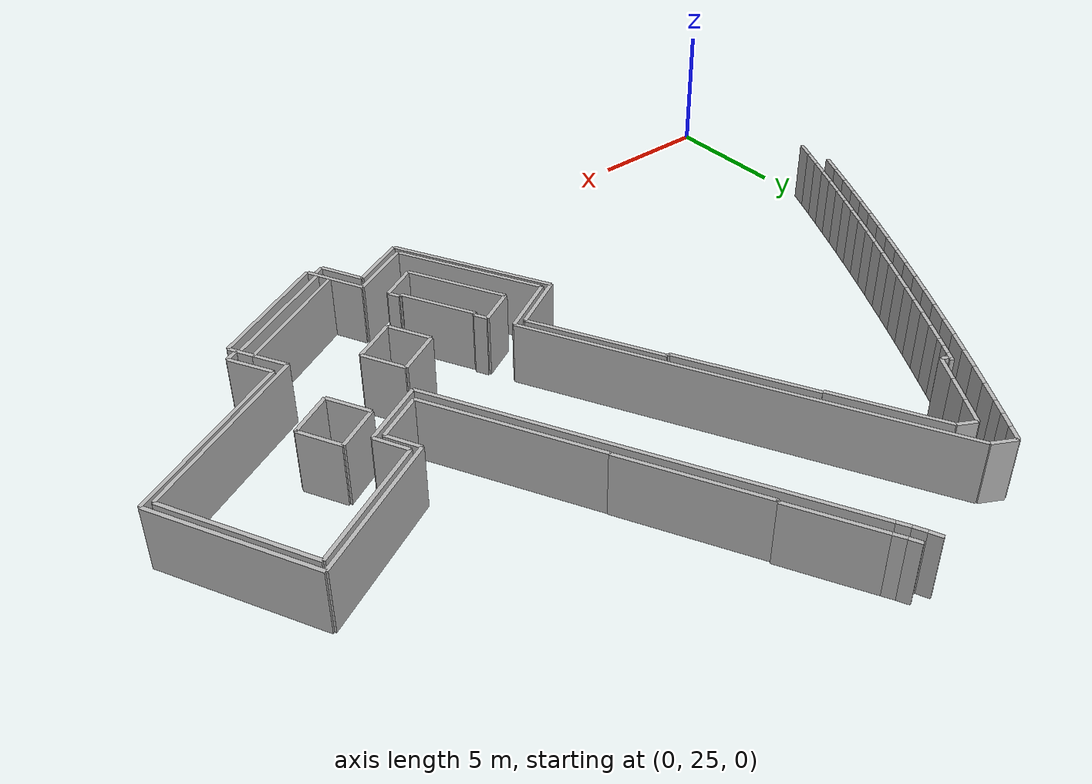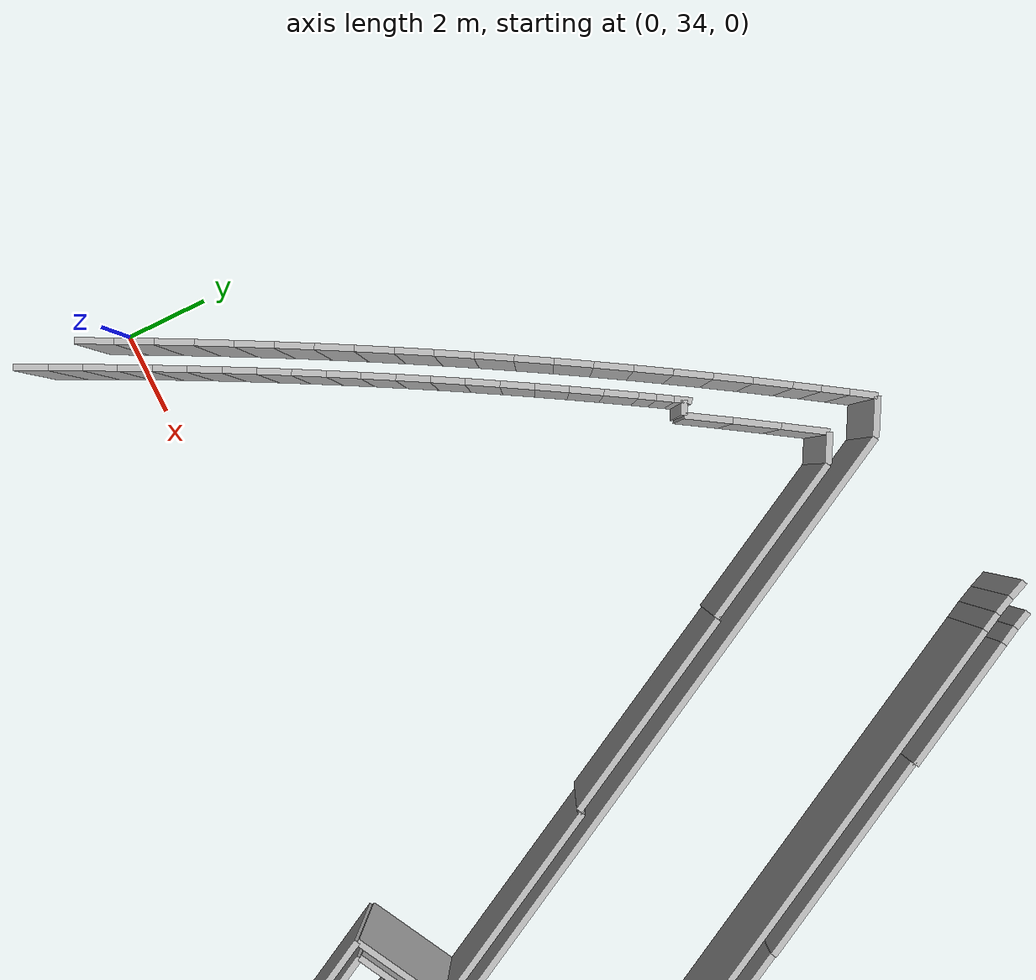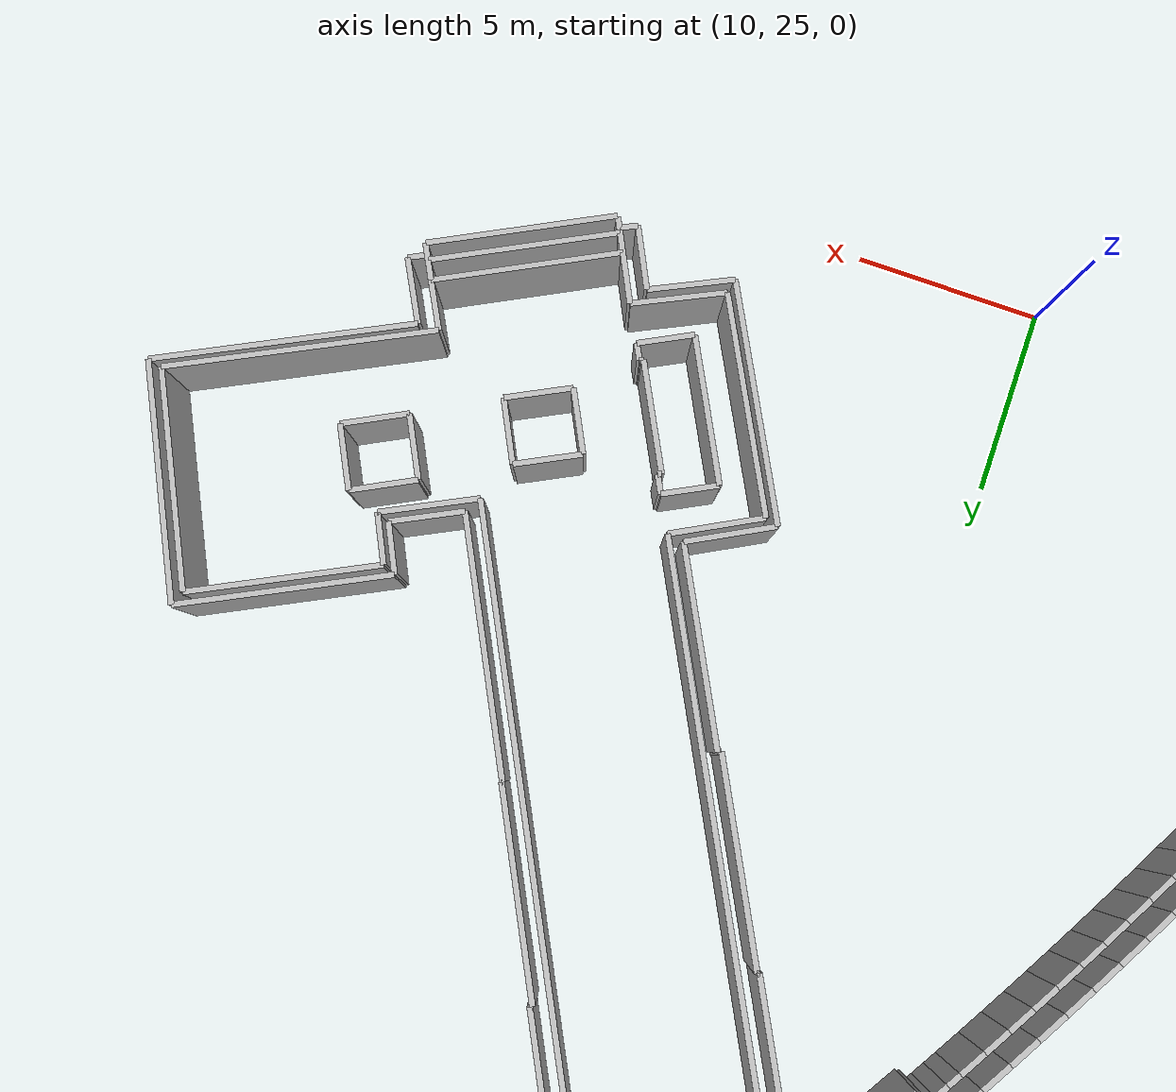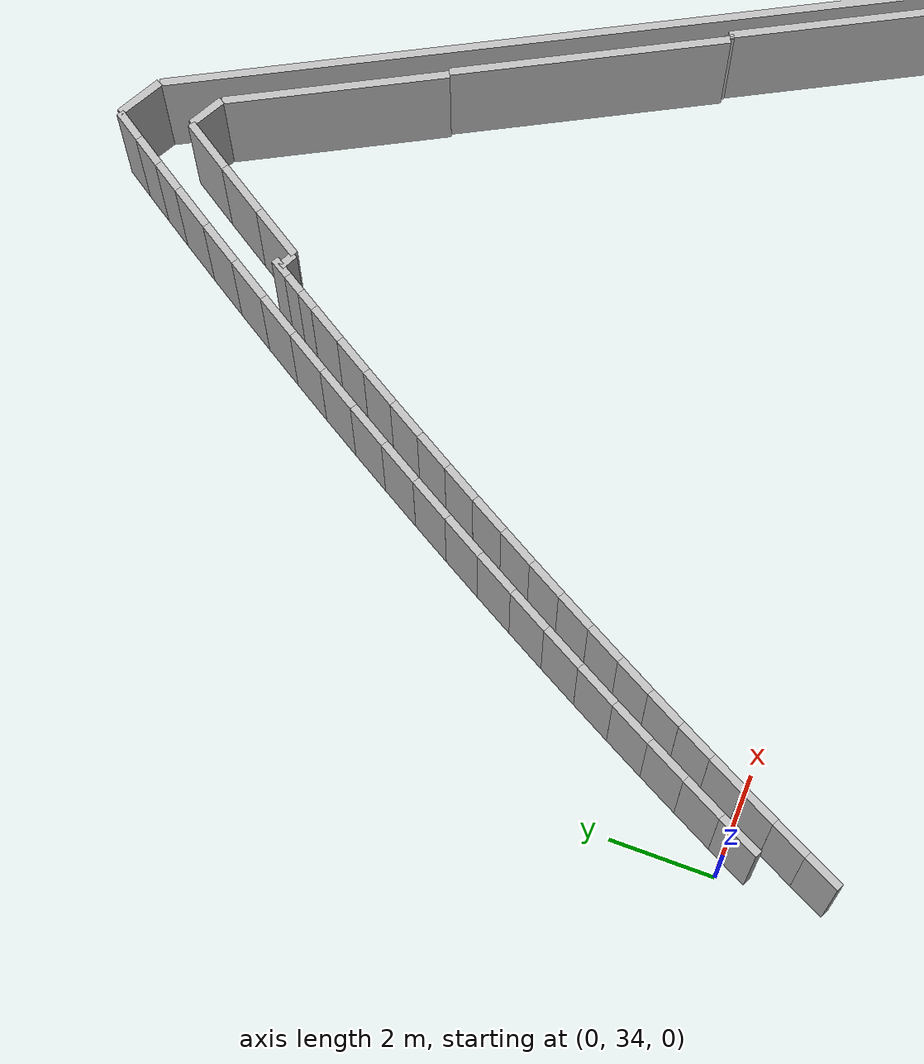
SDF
<sdf version="1.6">
 <model name="sps_0204">
  <static>1</static>
  <allow_auto_disable>0</allow_auto_disable>
  <link name="Wall28">
   <collision name="collision"><geometry><box><size>4.25279 0.15 2.5</size></box></geometry></collision>
   <visual name="visual">
    <geometry><box><size>4.25279 0.15 2.5</size></box></geometry>
    <transparency>0.0</transparency>
   </visual>
   <pose>11.0373 45.4844 1.25 0 -0 2.05709</pose>
  </link>
  <link name="Wall30">
   <collision name="collision"><geometry><box><size>0.0966874 0.15 2.5</size></box></geometry></collision>
   <visual name="visual">
    <geometry><box><size>0.0966874 0.15 2.5</size></box></geometry>
    <transparency>0.0</transparency>
   </visual>
   <pose>14.5934 38.9708 1.25 0 -0 0.474658</pose>
  </link>
  <link name="Wall33">
   <collision name="collision"><geometry><box><size>6.47312 0.15 2.5</size></box></geometry></collision>
   <visual name="visual">
    <geometry><box><size>6.47312 0.15 2.5</size></box></geometry>
    <transparency>0.0</transparency>
   </visual>
   <pose>16.5102 30.3436 1.25 0 0 -1.08328</pose>
  </link>
  <link name="Wall35">
   <collision name="collision"><geometry><box><size>2.28858 0.15 2.5</size></box></geometry></collision>
   <visual name="visual">
    <geometry><box><size>2.28858 0.15 2.5</size></box></geometry>
    <transparency>0.0</transparency>
   </visual>
   <pose>19.0546 27.9861 1.25 0 -0 0.454166</pose>
  </link>
  <link name="Wall413">
   <collision name="collision"><geometry><box><size>2.34081 0.15 2.5</size></box></geometry></collision>
   <visual name="visual">
    <geometry><box><size>2.34081 0.15 2.5</size></box></geometry>
    <transparency>0.0</transparency>
   </visual>
   <pose>20.8993 27.9341 1.25 0 0 -1.10477</pose>
  </link>
  <link name="Wall415">
   <collision name="collision"><geometry><box><size>6.75894 0.15 2.5</size></box></geometry></collision>
   <visual name="visual">
    <geometry><box><size>6.75894 0.15 2.5</size></box></geometry>
    <transparency>0.0</transparency>
   </visual>
   <pose>20.9337 38.4247 1.25 0 -0 2.05625</pose>
  </link>
  <link name="Wall416">
   <collision name="collision"><geometry><box><size>4.99709 0.15 2.5</size></box></geometry></collision>
   <visual name="visual">
    <geometry><box><size>4.99709 0.15 2.5</size></box></geometry>
    <transparency>0.0</transparency>
   </visual>
   <pose>23.6555 28.0325 1.25 0 -0 0.484067</pose>
  </link>
  <link name="Wall755">
   <collision name="collision"><geometry><box><size>0.728258 0.15 2.5</size></box></geometry></collision>
   <visual name="visual">
    <geometry><box><size>0.728258 0.15 2.5</size></box></geometry>
    <transparency>0.0</transparency>
   </visual>
   <pose>9.72488 47.5406 1.25 0 0 -0.505413</pose>
  </link>
  <link name="Wall759">
   <collision name="collision"><geometry><box><size>5.32181 0.15 2.5</size></box></geometry></collision>
   <visual name="visual">
    <geometry><box><size>5.32181 0.15 2.5</size></box></geometry>
    <transparency>0.0</transparency>
   </visual>
   <pose>18.1328 43.7763 1.25 0 -0 2.05629</pose>
  </link>
  <link name="Wall760">
   <collision name="collision"><geometry><box><size>0.456406 0.15 2.5</size></box></geometry></collision>
   <visual name="visual">
    <geometry><box><size>0.456406 0.15 2.5</size></box></geometry>
    <transparency>0.0</transparency>
   </visual>
   <pose>21.0629 27.0474 1.25 0 -0 0.454079</pose>
  </link>
  <link name="Wall762">
   <collision name="collision"><geometry><box><size>1.93319 0.15 2.5</size></box></geometry></collision>
   <visual name="visual">
    <geometry><box><size>1.93319 0.15 2.5</size></box></geometry>
    <transparency>0.0</transparency>
   </visual>
   <pose>23.3712 35.8758 1.25 0 0 -2.66888</pose>
  </link>
  <link name="Wall1157">
   <collision name="collision"><geometry><box><size>3.35007 0.15 2.5</size></box></geometry></collision>
   <visual name="visual">
    <geometry><box><size>3.35007 0.15 2.5</size></box></geometry>
    <transparency>0.0</transparency>
   </visual>
   <pose>16.1663 47.6404 1.25 0 -0 2.05625</pose>
  </link>
  <link name="Wall1159">
   <collision name="collision"><geometry><box><size>0.0198736 0.15 2.5</size></box></geometry></collision>
   <visual name="visual">
    <geometry><box><size>0.0198736 0.15 2.5</size></box></geometry>
    <transparency>0.0</transparency>
   </visual>
   <pose>19.3657 41.4183 1.25 0 -0 0.478756</pose>
  </link>
  <link name="Wall1162">
   <collision name="collision"><geometry><box><size>4.98615 0.15 2.5</size></box></geometry></collision>
   <visual name="visual">
    <geometry><box><size>4.98615 0.15 2.5</size></box></geometry>
    <transparency>0.0</transparency>
   </visual>
   <pose>23.1949 28.9172 1.25 0 -0 0.485913</pose>
  </link>
  <link name="Wall1165">
   <collision name="collision"><geometry><box><size>5.58246 0.15 2.5</size></box></geometry></collision>
   <visual name="visual">
    <geometry><box><size>5.58246 0.15 2.5</size></box></geometry>
    <transparency>0.0</transparency>
   </visual>
   <pose>26.1027 38.7876 1.25 0 0 -2.66886</pose>
  </link>
  <link name="Wall1166">
   <collision name="collision"><geometry><box><size>6.91351 0.15 2.5</size></box></geometry></collision>
   <visual name="visual">
    <geometry><box><size>6.91351 0.15 2.5</size></box></geometry>
    <transparency>0.0</transparency>
   </visual>
   <pose>28.391 32.8515 1.25 0 -0 0.472756</pose>
  </link>
  <link name="Wall1476">
   <collision name="collision"><geometry><box><size>5.29302 0.15 2.5</size></box></geometry></collision>
   <visual name="visual">
    <geometry><box><size>5.29302 0.15 2.5</size></box></geometry>
    <transparency>0.0</transparency>
   </visual>
   <pose>13.3136 41.2884 1.25 0 0 -1.08449</pose>
  </link>
  <link name="Wall1481">
   <collision name="collision"><geometry><box><size>1.34765 0.15 2.5</size></box></geometry></collision>
   <visual name="visual">
    <geometry><box><size>1.34765 0.15 2.5</size></box></geometry>
    <transparency>0.0</transparency>
   </visual>
   <pose>25.0743 30.6717 1.25 0 -0 2.07427</pose>
  </link>
  <link name="Wall1766">
   <collision name="collision"><geometry><box><size>0.344899 0.15 2.5</size></box></geometry></collision>
   <visual name="visual">
    <geometry><box><size>0.344899 0.15 2.5</size></box></geometry>
    <transparency>0.0</transparency>
   </visual>
   <pose>7.48968 45.0377 1.25 0 0 -0.453755</pose>
  </link>
  <link name="Wall1768">
   <collision name="collision"><geometry><box><size>0.0513748 0.15 2.5</size></box></geometry></collision>
   <visual name="visual">
    <geometry><box><size>0.0513748 0.15 2.5</size></box></geometry>
    <transparency>0.0</transparency>
   </visual>
   <pose>12.0539 43.6163 1.25 0 -0 0.476399</pose>
  </link>
  <link name="Wall2111">
   <collision name="collision"><geometry><box><size>15.6909 0.15 2.5</size></box></geometry></collision>
   <visual name="visual">
    <geometry><box><size>15.6909 0.15 2.5</size></box></geometry>
    <transparency>0.0</transparency>
   </visual>
   <pose>18.5987 41.9436 1.25 0 -0 2.05628</pose>
  </link>
  <link name="Wall2112">
   <collision name="collision"><geometry><box><size>1.34877 0.15 2.5</size></box></geometry></collision>
   <visual name="visual">
    <geometry><box><size>1.34877 0.15 2.5</size></box></geometry>
    <transparency>0.0</transparency>
   </visual>
   <pose>23.9247 36.9163 1.25 0 0 -1.098</pose>
  </link>
  <link name="Wall2115">
   <collision name="collision"><geometry><box><size>1.0022 0.15 2.5</size></box></geometry></collision>
   <visual name="visual">
    <geometry><box><size>1.0022 0.15 2.5</size></box></geometry>
    <transparency>0.0</transparency>
   </visual>
   <pose>25.6379 29.6408 1.25 0 0 -1.07476</pose>
  </link>
  <link name="Wall2116">
   <collision name="collision"><geometry><box><size>0.506853 0.15 2.5</size></box></geometry></collision>
   <visual name="visual">
    <geometry><box><size>0.506853 0.15 2.5</size></box></geometry>
    <transparency>0.0</transparency>
   </visual>
   <pose>25.946 29.6037 1.25 0 0 -2.66346</pose>
  </link>
  <link name="Wall2117">
   <collision name="collision"><geometry><box><size>1.77773 0.15 2.5</size></box></geometry></collision>
   <visual name="visual">
    <geometry><box><size>1.77773 0.15 2.5</size></box></geometry>
    <transparency>0.0</transparency>
   </visual>
   <pose>25.7422 30.4989 1.25 0 -0 2.07421</pose>
  </link>
  <link name="Wall2487">
   <collision name="collision"><geometry><box><size>0.0638214 0.15 2.5</size></box></geometry></collision>
   <visual name="visual">
    <geometry><box><size>0.0638214 0.15 2.5</size></box></geometry>
    <transparency>0.0</transparency>
   </visual>
   <pose>16.9195 46.1443 1.25 0 -0 0.474768</pose>
  </link>
  <link name="Wall2489">
   <collision name="collision"><geometry><box><size>2.39007 0.15 2.5</size></box></geometry></collision>
   <visual name="visual">
    <geometry><box><size>2.39007 0.15 2.5</size></box></geometry>
    <transparency>0.0</transparency>
   </visual>
   <pose>16.0427 33.7761 1.25 0 0 -2.64153</pose>
  </link>
  <link name="Wall2490">
   <collision name="collision"><geometry><box><size>5.25281 0.15 2.5</size></box></geometry></collision>
   <visual name="visual">
    <geometry><box><size>5.25281 0.15 2.5</size></box></geometry>
    <transparency>0.0</transparency>
   </visual>
   <pose>15.8639 36.671 1.25 0 0 -1.08448</pose>
  </link>
  <link name="Wall2493">
   <collision name="collision"><geometry><box><size>1.72477 0.15 2.5</size></box></geometry></collision>
   <visual name="visual">
    <geometry><box><size>1.72477 0.15 2.5</size></box></geometry>
    <transparency>0.0</transparency>
   </visual>
   <pose>20.4704 27.7177 1.25 0 0 -1.10476</pose>
  </link>
  <link name="Wall2496">
   <collision name="collision"><geometry><box><size>4.99734 0.15 2.5</size></box></geometry></collision>
   <visual name="visual">
    <geometry><box><size>4.99734 0.15 2.5</size></box></geometry>
    <transparency>0.0</transparency>
   </visual>
   <pose>23.4412 28.4403 1.25 0 -0 0.484055</pose>
  </link>
  <link name="Wall2502">
   <collision name="collision"><geometry><box><size>6.3269 0.15 2.5</size></box></geometry></collision>
   <visual name="visual">
    <geometry><box><size>6.3269 0.15 2.5</size></box></geometry>
    <transparency>0.0</transparency>
   </visual>
   <pose>30.0283 37.242 1.25 0 -0 2.04353</pose>
  </link>
  <link name="Wall6495">
   <collision name="collision"><geometry><box><size>1.72361 0.15 2.5</size></box></geometry></collision>
   <visual name="visual">
    <geometry><box><size>1.72361 0.15 2.5</size></box></geometry>
    <transparency>0.0</transparency>
   </visual>
   <pose>24.2963 34.3156 1.25 0 0 -1.08353</pose>
  </link>
  <link name="Wall6496">
   <collision name="collision"><geometry><box><size>1.76609 0.15 2.5</size></box></geometry></collision>
   <visual name="visual">
    <geometry><box><size>1.76609 0.15 2.5</size></box></geometry>
    <transparency>0.0</transparency>
   </visual>
   <pose>25.4802 33.9675 1.25 0 -0 0.487188</pose>
  </link>
  <link name="Wall6497">
   <collision name="collision"><geometry><box><size>1.72369 0.15 2.5</size></box></geometry></collision>
   <visual name="visual">
    <geometry><box><size>1.72369 0.15 2.5</size></box></geometry>
    <transparency>0.0</transparency>
   </visual>
   <pose>25.8569 35.1424 1.25 0 -0 2.05815</pose>
  </link>
  <link name="Wall6498">
   <collision name="collision"><geometry><box><size>1.76593 0.15 2.5</size></box></geometry></collision>
   <visual name="visual">
    <geometry><box><size>1.76593 0.15 2.5</size></box></geometry>
    <transparency>0.0</transparency>
   </visual>
   <pose>24.6731 35.4905 1.25 0 0 -2.65436</pose>
  </link>
  <link name="Wall8995">
   <collision name="collision"><geometry><box><size>0.637463 0.15 2.5</size></box></geometry></collision>
   <visual name="visual">
    <geometry><box><size>0.637463 0.15 2.5</size></box></geometry>
    <transparency>0.0</transparency>
   </visual>
   <pose>8.97726 48.7729 1.25 0 0 -2.15657</pose>
  </link>
  <link name="Wall8996">
   <collision name="collision"><geometry><box><size>0.637495 0.15 2.5</size></box></geometry></collision>
   <visual name="visual">
    <geometry><box><size>0.637495 0.15 2.5</size></box></geometry>
    <transparency>0.0</transparency>
   </visual>
   <pose>8.62615 48.2408 1.25 0 0 -2.1516</pose>
  </link>
  <link name="Wall8997">
   <collision name="collision"><geometry><box><size>0.637545 0.15 2.5</size></box></geometry></collision>
   <visual name="visual">
    <geometry><box><size>0.637545 0.15 2.5</size></box></geometry>
    <transparency>0.0</transparency>
   </visual>
   <pose>8.27776 47.7069 1.25 0 0 -2.14629</pose>
  </link>
  <link name="Wall8998">
   <collision name="collision"><geometry><box><size>0.895615 0.15 2.5</size></box></geometry></collision>
   <visual name="visual">
    <geometry><box><size>0.895615 0.15 2.5</size></box></geometry>
    <transparency>0.0</transparency>
   </visual>
   <pose>7.86196 47.0629 1.25 0 0 -2.14254</pose>
  </link>
  <link name="Wall8999">
   <collision name="collision"><geometry><box><size>0.895689 0.15 2.5</size></box></geometry></collision>
   <visual name="visual">
    <geometry><box><size>0.895689 0.15 2.5</size></box></geometry>
    <transparency>0.0</transparency>
   </visual>
   <pose>7.37966 46.3082 1.25 0 0 -2.13634</pose>
  </link>
  <link name="Wall9000">
   <collision name="collision"><geometry><box><size>0.895531 0.15 2.5</size></box></geometry></collision>
   <visual name="visual">
    <geometry><box><size>0.895531 0.15 2.5</size></box></geometry>
    <transparency>0.0</transparency>
   </visual>
   <pose>6.90215 45.5505 1.25 0 0 -2.12993</pose>
  </link>
  <link name="Wall9001">
   <collision name="collision"><geometry><box><size>0.895547 0.15 2.5</size></box></geometry></collision>
   <visual name="visual">
    <geometry><box><size>0.895547 0.15 2.5</size></box></geometry>
    <transparency>0.0</transparency>
   </visual>
   <pose>6.42956 44.7898 1.25 0 0 -2.1235</pose>
  </link>
  <link name="Wall9002">
   <collision name="collision"><geometry><box><size>0.895642 0.15 2.5</size></box></geometry></collision>
   <visual name="visual">
    <geometry><box><size>0.895642 0.15 2.5</size></box></geometry>
    <transparency>0.0</transparency>
   </visual>
   <pose>5.96175 44.0261 1.25 0 0 -2.11728</pose>
  </link>
  <link name="Wall9003">
   <collision name="collision"><geometry><box><size>0.895521 0.15 2.5</size></box></geometry></collision>
   <visual name="visual">
    <geometry><box><size>0.895521 0.15 2.5</size></box></geometry>
    <transparency>0.0</transparency>
   </visual>
   <pose>5.49874 43.2595 1.25 0 0 -2.11099</pose>
  </link>
  <link name="Wall9004">
   <collision name="collision"><geometry><box><size>0.895498 0.15 2.5</size></box></geometry></collision>
   <visual name="visual">
    <geometry><box><size>0.895498 0.15 2.5</size></box></geometry>
    <transparency>0.0</transparency>
   </visual>
   <pose>5.04055 42.4901 1.25 0 0 -2.10482</pose>
  </link>
  <link name="Wall9005">
   <collision name="collision"><geometry><box><size>0.895636 0.15 2.5</size></box></geometry></collision>
   <visual name="visual">
    <geometry><box><size>0.895636 0.15 2.5</size></box></geometry>
    <transparency>0.0</transparency>
   </visual>
   <pose>4.58715 41.7178 1.25 0 0 -2.09849</pose>
  </link>
  <link name="Wall9006">
   <collision name="collision"><geometry><box><size>0.895559 0.15 2.5</size></box></geometry></collision>
   <visual name="visual">
    <geometry><box><size>0.895559 0.15 2.5</size></box></geometry>
    <transparency>0.0</transparency>
   </visual>
   <pose>4.13866 40.9426 1.25 0 0 -2.09208</pose>
  </link>
  <link name="Wall9007">
   <collision name="collision"><geometry><box><size>0.895428 0.15 2.5</size></box></geometry></collision>
   <visual name="visual">
    <geometry><box><size>0.895428 0.15 2.5</size></box></geometry>
    <transparency>0.0</transparency>
   </visual>
   <pose>3.69506 40.1647 1.25 0 0 -2.08604</pose>
  </link>
  <link name="Wall9008">
   <collision name="collision"><geometry><box><size>0.895637 0.15 2.5</size></box></geometry></collision>
   <visual name="visual">
    <geometry><box><size>0.895637 0.15 2.5</size></box></geometry>
    <transparency>0.0</transparency>
   </visual>
   <pose>3.25634 39.384 1.25 0 0 -2.0795</pose>
  </link>
  <link name="Wall9009">
   <collision name="collision"><geometry><box><size>0.895544 0.15 2.5</size></box></geometry></collision>
   <visual name="visual">
    <geometry><box><size>0.895544 0.15 2.5</size></box></geometry>
    <transparency>0.0</transparency>
   </visual>
   <pose>2.82253 38.6005 1.25 0 0 -2.07341</pose>
  </link>
  <link name="Wall9010">
   <collision name="collision"><geometry><box><size>0.895611 0.15 2.5</size></box></geometry></collision>
   <visual name="visual">
    <geometry><box><size>0.895611 0.15 2.5</size></box></geometry>
    <transparency>0.0</transparency>
   </visual>
   <pose>2.39364 37.8143 1.25 0 0 -2.067</pose>
  </link>
  <link name="Wall9011">
   <collision name="collision"><geometry><box><size>0.895554 0.15 2.5</size></box></geometry></collision>
   <visual name="visual">
    <geometry><box><size>0.895554 0.15 2.5</size></box></geometry>
    <transparency>0.0</transparency>
   </visual>
   <pose>1.96975 37.0254 1.25 0 0 -2.06069</pose>
  </link>
  <link name="Wall9012">
   <collision name="collision"><geometry><box><size>0.895641 0.15 2.5</size></box></geometry></collision>
   <visual name="visual">
    <geometry><box><size>0.895641 0.15 2.5</size></box></geometry>
    <transparency>0.0</transparency>
   </visual>
   <pose>1.55086 36.2338 1.25 0 0 -2.05432</pose>
  </link>
  <link name="Wall9013">
   <collision name="collision"><geometry><box><size>0.895521 0.15 2.5</size></box></geometry></collision>
   <visual name="visual">
    <geometry><box><size>0.895521 0.15 2.5</size></box></geometry>
    <transparency>0.0</transparency>
   </visual>
   <pose>1.13695 35.4396 1.25 0 0 -2.04816</pose>
  </link>
  <link name="Wall9014">
   <collision name="collision"><geometry><box><size>0.895489 0.15 2.5</size></box></geometry></collision>
   <visual name="visual">
    <geometry><box><size>0.895489 0.15 2.5</size></box></geometry>
    <transparency>0.0</transparency>
   </visual>
   <pose>0.72805 34.6429 1.25 0 0 -2.04182</pose>
  </link>
  <link name="Wall9015">
   <collision name="collision"><geometry><box><size>0.895601 0.15 2.5</size></box></geometry></collision>
   <visual name="visual">
    <geometry><box><size>0.895601 0.15 2.5</size></box></geometry>
    <transparency>0.0</transparency>
   </visual>
   <pose>0.324149 33.8436 1.25 0 0 -2.03557</pose>
  </link>
  <link name="Wall9028">
   <collision name="collision"><geometry><box><size>1.09009 0.15 2.5</size></box></geometry></collision>
   <visual name="visual">
    <geometry><box><size>1.09009 0.15 2.5</size></box></geometry>
    <transparency>0.0</transparency>
   </visual>
   <pose>9.10967 47.2596 1.25 0 0 -2.1462</pose>
  </link>
  <link name="Wall9029">
   <collision name="collision"><geometry><box><size>1.08977 0.15 2.5</size></box></geometry></collision>
   <visual name="visual">
    <geometry><box><size>1.08977 0.15 2.5</size></box></geometry>
    <transparency>0.0</transparency>
   </visual>
   <pose>8.51946 46.3433 1.25 0 0 -2.13986</pose>
  </link>
  <link name="Wall9030">
   <collision name="collision"><geometry><box><size>1.09001 0.15 2.5</size></box></geometry></collision>
   <visual name="visual">
    <geometry><box><size>1.09001 0.15 2.5</size></box></geometry>
    <transparency>0.0</transparency>
   </visual>
   <pose>7.93514 45.4233 1.25 0 0 -2.13342</pose>
  </link>
  <link name="Wall9043">
   <collision name="collision"><geometry><box><size>0.467468 0.15 2.5</size></box></geometry></collision>
   <visual name="visual">
    <geometry><box><size>0.467468 0.15 2.5</size></box></geometry>
    <transparency>0.0</transparency>
   </visual>
   <pose>14.4293 49.9343 1.25 0 0 -1.1764</pose>
  </link>
  <link name="Wall9044">
   <collision name="collision"><geometry><box><size>0.467509 0.15 2.5</size></box></geometry></collision>
   <visual name="visual">
    <geometry><box><size>0.467509 0.15 2.5</size></box></geometry>
    <transparency>0.0</transparency>
   </visual>
   <pose>14.6188 49.5071 1.25 0 0 -1.13015</pose>
  </link>
  <link name="Wall9045">
   <collision name="collision"><geometry><box><size>0.467685 0.15 2.5</size></box></geometry></collision>
   <visual name="visual">
    <geometry><box><size>0.467685 0.15 2.5</size></box></geometry>
    <transparency>0.0</transparency>
   </visual>
   <pose>14.8281 49.0891 1.25 0 0 -1.08304</pose>
  </link>
  <link name="Wall12735">
   <collision name="collision"><geometry><box><size>1.71909 0.15 2.5</size></box></geometry></collision>
   <visual name="visual">
    <geometry><box><size>1.71909 0.15 2.5</size></box></geometry>
    <transparency>0.0</transparency>
   </visual>
   <pose>20.6027 32.3137 1.25 0 0 -1.09229</pose>
  </link>
  <link name="Wall12736">
   <collision name="collision"><geometry><box><size>1.78818 0.15 2.5</size></box></geometry></collision>
   <visual name="visual">
    <geometry><box><size>1.78818 0.15 2.5</size></box></geometry>
    <transparency>0.0</transparency>
   </visual>
   <pose>21.792 31.9625 1.25 0 -0 0.478653</pose>
  </link>
  <link name="Wall12737">
   <collision name="collision"><geometry><box><size>1.73085 0.15 2.5</size></box></geometry></collision>
   <visual name="visual">
    <geometry><box><size>1.73085 0.15 2.5</size></box></geometry>
    <transparency>0.0</transparency>
   </visual>
   <pose>22.1872 33.1425 1.25 0 -0 2.04932</pose>
  </link>
  <link name="Wall12738">
   <collision name="collision"><geometry><box><size>1.7881 0.15 2.5</size></box></geometry></collision>
   <visual name="visual">
    <geometry><box><size>1.7881 0.15 2.5</size></box></geometry>
    <transparency>0.0</transparency>
   </visual>
   <pose>20.995 33.499 1.25 0 0 -2.66303</pose>
  </link>
  <link name="Wall12739">
   <collision name="collision"><geometry><box><size>0.0119287 0.15 2.5</size></box></geometry></collision>
   <visual name="visual">
    <geometry><box><size>0.0119287 0.15 2.5</size></box></geometry>
    <transparency>0.0</transparency>
   </visual>
   <pose>20.2042 33.082 1.25 0 0 -1.098</pose>
  </link>
  <link name="Wall16542">
   <collision name="collision"><geometry><box><size>0.401336 0.15 2.5</size></box></geometry></collision>
   <visual name="visual">
    <geometry><box><size>0.401336 0.15 2.5</size></box></geometry>
    <transparency>0.0</transparency>
   </visual>
   <pose>7.31994 45.0896 1.25 0 0 -2.12796</pose>
  </link>
  <link name="Wall16543">
   <collision name="collision"><geometry><box><size>0.401048 0.15 2.5</size></box></geometry></collision>
   <visual name="visual">
    <geometry><box><size>0.401048 0.15 2.5</size></box></geometry>
    <transparency>0.0</transparency>
   </visual>
   <pose>7.10824 44.7488 1.25 0 0 -2.12536</pose>
  </link>
  <link name="Wall16544">
   <collision name="collision"><geometry><box><size>0.401202 0.15 2.5</size></box></geometry></collision>
   <visual name="visual">
    <geometry><box><size>0.401202 0.15 2.5</size></box></geometry>
    <transparency>0.0</transparency>
   </visual>
   <pose>6.89745 44.4075 1.25 0 0 -2.1228</pose>
  </link>
  <link name="Wall16545">
   <collision name="collision"><geometry><box><size>0.778182 0.15 2.5</size></box></geometry></collision>
   <visual name="visual">
    <geometry><box><size>0.778182 0.15 2.5</size></box></geometry>
    <transparency>0.0</transparency>
   </visual>
   <pose>6.58956 43.9046 1.25 0 0 -2.11876</pose>
  </link>
  <link name="Wall16546">
   <collision name="collision"><geometry><box><size>0.778236 0.15 2.5</size></box></geometry></collision>
   <visual name="visual">
    <geometry><box><size>0.778236 0.15 2.5</size></box></geometry>
    <transparency>0.0</transparency>
   </visual>
   <pose>6.18587 43.2393 1.25 0 0 -2.11358</pose>
  </link>
  <link name="Wall16547">
   <collision name="collision"><geometry><box><size>0.778049 0.15 2.5</size></box></geometry></collision>
   <visual name="visual">
    <geometry><box><size>0.778049 0.15 2.5</size></box></geometry>
    <transparency>0.0</transparency>
   </visual>
   <pose>5.78576 42.5719 1.25 0 0 -2.10815</pose>
  </link>
  <link name="Wall16548">
   <collision name="collision"><geometry><box><size>0.778318 0.15 2.5</size></box></geometry></collision>
   <visual name="visual">
    <geometry><box><size>0.778318 0.15 2.5</size></box></geometry>
    <transparency>0.0</transparency>
   </visual>
   <pose>5.38946 41.9022 1.25 0 0 -2.10211</pose>
  </link>
  <link name="Wall16549">
   <collision name="collision"><geometry><box><size>0.77806 0.15 2.5</size></box></geometry></collision>
   <visual name="visual">
    <geometry><box><size>0.77806 0.15 2.5</size></box></geometry>
    <transparency>0.0</transparency>
   </visual>
   <pose>4.99688 41.2303 1.25 0 0 -2.09704</pose>
  </link>
  <link name="Wall16550">
   <collision name="collision"><geometry><box><size>0.778322 0.15 2.5</size></box></geometry></collision>
   <visual name="visual">
    <geometry><box><size>0.778322 0.15 2.5</size></box></geometry>
    <transparency>0.0</transparency>
   </visual>
   <pose>4.60787 40.5563 1.25 0 0 -2.0915</pose>
  </link>
  <link name="Wall16551">
   <collision name="collision"><geometry><box><size>0.778108 0.15 2.5</size></box></geometry></collision>
   <visual name="visual">
    <geometry><box><size>0.778108 0.15 2.5</size></box></geometry>
    <transparency>0.0</transparency>
   </visual>
   <pose>4.22265 39.8801 1.25 0 0 -2.08579</pose>
  </link>
  <link name="Wall16552">
   <collision name="collision"><geometry><box><size>0.778158 0.15 2.5</size></box></geometry></collision>
   <visual name="visual">
    <geometry><box><size>0.778158 0.15 2.5</size></box></geometry>
    <transparency>0.0</transparency>
   </visual>
   <pose>3.84115 39.2019 1.25 0 0 -2.08062</pose>
  </link>
  <link name="Wall16553">
   <collision name="collision"><geometry><box><size>0.778153 0.15 2.5</size></box></geometry></collision>
   <visual name="visual">
    <geometry><box><size>0.778153 0.15 2.5</size></box></geometry>
    <transparency>0.0</transparency>
   </visual>
   <pose>3.46337 38.5216 1.25 0 0 -2.07479</pose>
  </link>
  <link name="Wall16554">
   <collision name="collision"><geometry><box><size>0.778305 0.15 2.5</size></box></geometry></collision>
   <visual name="visual">
    <geometry><box><size>0.778305 0.15 2.5</size></box></geometry>
    <transparency>0.0</transparency>
   </visual>
   <pose>3.08926 37.8392 1.25 0 0 -2.06977</pose>
  </link>
  <link name="Wall16555">
   <collision name="collision"><geometry><box><size>0.778159 0.15 2.5</size></box></geometry></collision>
   <visual name="visual">
    <geometry><box><size>0.778159 0.15 2.5</size></box></geometry>
    <transparency>0.0</transparency>
   </visual>
   <pose>2.71883 37.1548 1.25 0 0 -2.06398</pose>
  </link>
  <link name="Wall16556">
   <collision name="collision"><geometry><box><size>0.778373 0.15 2.5</size></box></geometry></collision>
   <visual name="visual">
    <geometry><box><size>0.778373 0.15 2.5</size></box></geometry>
    <transparency>0.0</transparency>
   </visual>
   <pose>2.35226 36.4683 1.25 0 0 -2.0585</pose>
  </link>
  <link name="Wall16557">
   <collision name="collision"><geometry><box><size>0.778118 0.15 2.5</size></box></geometry></collision>
   <visual name="visual">
    <geometry><box><size>0.778118 0.15 2.5</size></box></geometry>
    <transparency>0.0</transparency>
   </visual>
   <pose>1.98946 35.7798 1.25 0 0 -2.053</pose>
  </link>
  <link name="Wall16558">
   <collision name="collision"><geometry><box><size>0.778215 0.15 2.5</size></box></geometry></collision>
   <visual name="visual">
    <geometry><box><size>0.778215 0.15 2.5</size></box></geometry>
    <transparency>0.0</transparency>
   </visual>
   <pose>1.63045 35.0894 1.25 0 0 -2.04763</pose>
  </link>
  <link name="Wall16559">
   <collision name="collision"><geometry><box><size>0.778142 0.15 2.5</size></box></geometry></collision>
   <visual name="visual">
    <geometry><box><size>0.778142 0.15 2.5</size></box></geometry>
    <transparency>0.0</transparency>
   </visual>
   <pose>1.27526 34.397 1.25 0 0 -2.04195</pose>
  </link>
  <link name="Wall16560">
   <collision name="collision"><geometry><box><size>0.778367 0.15 2.5</size></box></geometry></collision>
   <visual name="visual">
    <geometry><box><size>0.778367 0.15 2.5</size></box></geometry>
    <transparency>0.0</transparency>
   </visual>
   <pose>0.92385 33.7026 1.25 0 0 -2.03662</pose>
  </link>
  <link name="Wall16561">
   <collision name="collision"><geometry><box><size>0.777933 0.15 2.5</size></box></geometry></collision>
   <visual name="visual">
    <geometry><box><size>0.777933 0.15 2.5</size></box></geometry>
    <transparency>0.0</transparency>
   </visual>
   <pose>0.576255 33.0064 1.25 0 0 -2.03111</pose>
  </link>
  <link name="Wall16562">
   <collision name="collision"><geometry><box><size>0.778288 0.15 2.5</size></box></geometry></collision>
   <visual name="visual">
    <geometry><box><size>0.778288 0.15 2.5</size></box></geometry>
    <transparency>0.0</transparency>
   </visual>
   <pose>0.232566 32.3083 1.25 0 0 -2.02547</pose>
  </link>
  <link name="Wall18924">
   <collision name="collision"><geometry><box><size>3.94316 0.15 2.5</size></box></geometry></collision>
   <visual name="visual">
    <geometry><box><size>3.94316 0.15 2.5</size></box></geometry>
    <transparency>0.0</transparency>
   </visual>
   <pose>17.6207 30.9563 1.25 0 0 -1.08622</pose>
  </link>
  <link name="Wall18925">
   <collision name="collision"><geometry><box><size>1.49922 0.15 2.5</size></box></geometry></collision>
   <visual name="visual">
    <geometry><box><size>1.49922 0.15 2.5</size></box></geometry>
    <transparency>0.0</transparency>
   </visual>
   <pose>19.2024 29.5609 1.25 0 -0 0.484605</pose>
  </link>
  <link name="Wall18926">
   <collision name="collision"><geometry><box><size>0.459461 0.15 2.5</size></box></geometry></collision>
   <visual name="visual">
    <geometry><box><size>0.459461 0.15 2.5</size></box></geometry>
    <transparency>0.0</transparency>
   </visual>
   <pose>19.7587 30.1134 1.25 0 -0 2.05542</pose>
  </link>
  <link name="Wall18927">
   <collision name="collision"><geometry><box><size>0.104972 0.15 2.5</size></box></geometry></collision>
   <visual name="visual">
    <geometry><box><size>0.104972 0.15 2.5</size></box></geometry>
    <transparency>0.0</transparency>
   </visual>
   <pose>19.6052 30.2923 1.25 0 0 -2.65844</pose>
  </link>
  <link name="Wall18928">
   <collision name="collision"><geometry><box><size>2.97698 0.15 2.5</size></box></geometry></collision>
   <visual name="visual">
    <geometry><box><size>2.97698 0.15 2.5</size></box></geometry>
    <transparency>0.0</transparency>
   </visual>
   <pose>18.8653 31.585 1.25 0 -0 2.0554</pose>
  </link>
  <link name="Wall18929">
   <collision name="collision"><geometry><box><size>0.100029 0.15 2.5</size></box></geometry></collision>
   <visual name="visual">
    <geometry><box><size>0.100029 0.15 2.5</size></box></geometry>
    <transparency>0.0</transparency>
   </visual>
   <pose>18.2161 32.9253 1.25 0 -0 0.482204</pose>
  </link>
  <link name="Wall18930">
   <collision name="collision"><geometry><box><size>0.506778 0.15 2.5</size></box></geometry></collision>
   <visual name="visual">
    <geometry><box><size>0.506778 0.15 2.5</size></box></geometry>
    <transparency>0.0</transparency>
   </visual>
   <pose>18.1424 33.1727 1.25 0 -0 2.05567</pose>
  </link>
  <link name="Wall18931">
   <collision name="collision"><geometry><box><size>1.49403 0.15 2.5</size></box></geometry></collision>
   <visual name="visual">
    <geometry><box><size>1.49403 0.15 2.5</size></box></geometry>
    <transparency>0.0</transparency>
   </visual>
   <pose>17.3632 33.0489 1.25 0 0 -2.65701</pose>
  </link>
  <link name="Wall20925">
   <collision name="collision"><geometry><box><size>2.50012 0.15 2.5</size></box></geometry></collision>
   <visual name="visual">
    <geometry><box><size>2.50012 0.15 2.5</size></box></geometry>
    <transparency>0.0</transparency>
   </visual>
   <pose>16.4347 33.6955 1.25 0 0 -2.64152</pose>
  </link>
  <link name="Wall20926">
   <collision name="collision"><geometry><box><size>5.91198 0.15 2.5</size></box></geometry></collision>
   <visual name="visual">
    <geometry><box><size>5.91198 0.15 2.5</size></box></geometry>
    <transparency>0.0</transparency>
   </visual>
   <pose>16.7224 30.4845 1.25 0 0 -1.08327</pose>
  </link>
  <link name="Wall20927">
   <collision name="collision"><geometry><box><size>2.52218 0.15 2.5</size></box></geometry></collision>
   <visual name="visual">
    <geometry><box><size>2.52218 0.15 2.5</size></box></geometry>
    <transparency>0.0</transparency>
   </visual>
   <pose>19.2403 28.4263 1.25 0 -0 0.454297</pose>
  </link>
  <link name="Wall27396">
   <collision name="collision"><geometry><box><size>0.447189 0.15 2.5</size></box></geometry></collision>
   <visual name="visual">
    <geometry><box><size>0.447189 0.15 2.5</size></box></geometry>
    <transparency>0.0</transparency>
   </visual>
   <pose>15.0793 49.7191 1.25 0 0 -1.12955</pose>
  </link>
  <link name="Wall27397">
   <collision name="collision"><geometry><box><size>0.447295 0.15 2.5</size></box></geometry></collision>
   <visual name="visual">
    <geometry><box><size>0.447295 0.15 2.5</size></box></geometry>
    <transparency>0.0</transparency>
   </visual>
   <pose>15.2797 49.3194 1.25 0 0 -1.08249</pose>
  </link>
  <link name="Wall27398">
   <collision name="collision"><geometry><box><size>0.942731 0.15 2.5</size></box></geometry></collision>
   <visual name="visual">
    <geometry><box><size>0.942731 0.15 2.5</size></box></geometry>
    <transparency>0.0</transparency>
   </visual>
   <pose>9.56634 48.8104 1.25 0 0 -0.505093</pose>
  </link>
  <link name="Wall27399">
   <collision name="collision"><geometry><box><size>16.1609 0.15 2.5</size></box></geometry></collision>
   <visual name="visual">
    <geometry><box><size>16.1609 0.15 2.5</size></box></geometry>
    <transparency>0.0</transparency>
   </visual>
   <pose>13.7552 41.4386 1.25 0 0 -1.08451</pose>
  </link>
  <link name="Wall27400">
   <collision name="collision"><geometry><box><size>7.11218 0.15 2.5</size></box></geometry></collision>
   <visual name="visual">
    <geometry><box><size>7.11218 0.15 2.5</size></box></geometry>
    <transparency>0.0</transparency>
   </visual>
   <pose>27.9152 32.8812 1.25 0 -0 0.472774</pose>
  </link>
  <link name="Wall27401">
   <collision name="collision"><geometry><box><size>5.80659 0.15 2.5</size></box></geometry></collision>
   <visual name="visual">
    <geometry><box><size>5.80659 0.15 2.5</size></box></geometry>
    <transparency>0.0</transparency>
   </visual>
   <pose>29.7594 37.0854 1.25 0 -0 2.04352</pose>
  </link>
  <link name="Wall27402">
   <collision name="collision"><geometry><box><size>5.02743 0.15 2.5</size></box></geometry></collision>
   <visual name="visual">
    <geometry><box><size>5.02743 0.15 2.5</size></box></geometry>
    <transparency>0.0</transparency>
   </visual>
   <pose>26.1995 38.5257 1.25 0 0 -2.66884</pose>
  </link>
  <link name="Wall27403">
   <collision name="collision"><geometry><box><size>1.34093 0.15 2.5</size></box></geometry></collision>
   <visual name="visual">
    <geometry><box><size>1.34093 0.15 2.5</size></box></geometry>
    <transparency>0.0</transparency>
   </visual>
   <pose>24.2667 36.7842 1.25 0 0 -1.09803</pose>
  </link>
  <link name="Wall27404">
   <collision name="collision"><geometry><box><size>2.59722 0.15 2.5</size></box></geometry></collision>
   <visual name="visual">
    <geometry><box><size>2.59722 0.15 2.5</size></box></geometry>
    <transparency>0.0</transparency>
   </visual>
   <pose>23.4159 35.596 1.25 0 0 -2.66886</pose>
  </link>
 </model>
</sdf>
